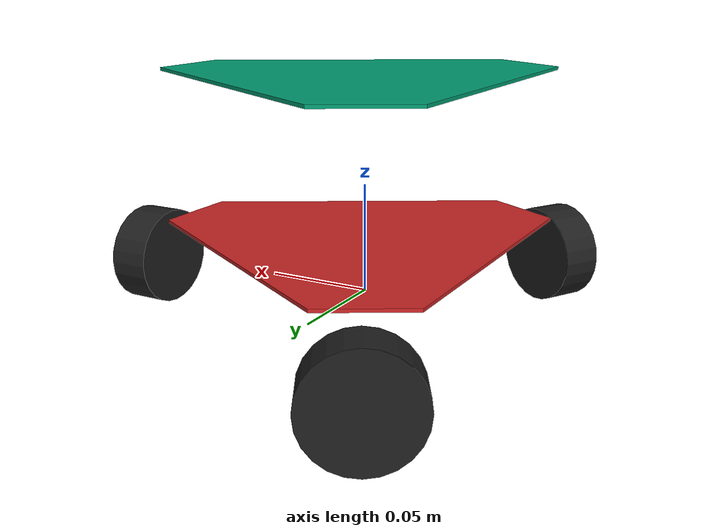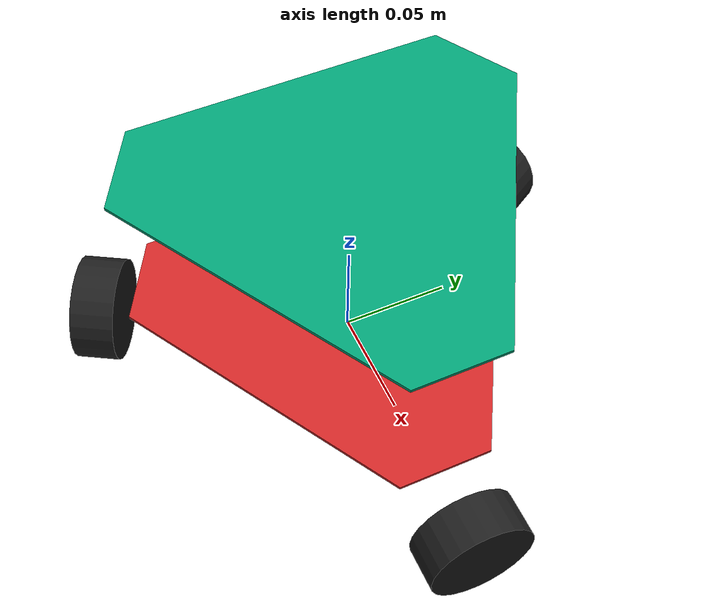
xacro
<?xml version="1.0" ?>
<!--
 This is a standalone URDF model of 2WD smart car robot
 -->

<robot name="delta_robot" xmlns:xacro="http://ros.org/wiki/xacro">

  <xacro:include filename="$(find delta_robot_description)/urdf/delta.gazebo.xacro"/>

  <xacro:property name="M_PI" value="3.1415926535897931" />
  <xacro:property name="M_PI_2" value="1.570796327" />
  <xacro:property name="DEG_TO_RAD" value="0.017453293" />

    <link name="base_footprint"/>
    <joint name="base_joint" type="fixed">
      <origin xyz="0 0 0.024" rpy="0 0 0" />
      <parent link="base_footprint"/>
      <child link="base_link" />
    </joint>

    <link name="base_link">
      <visual>
        <geometry>
          <!-- new mesh -->
          <mesh filename="package://delta_robot_description/meshes/body/base.dae" scale="0.001 0.001 0.001"/>
        </geometry>
	 	<origin xyz="0 0 0" rpy=" 0 0 0 "/>
      </visual>

    <collision>
        <geometry>
		<mesh filename="package://delta_robot_description/meshes/body/base.dae" scale="0.001 0.001 0.001"/>
        </geometry>
	 	<origin xyz="0 0 0" rpy=" 0 0 0 "/>
	</collision>

      <inertial>
        <!-- COM experimentally determined -->
        <origin xyz="0 0 0"/>
        <mass value="2.4"/> <!-- 2.4/2.6 kg for small/big battery pack -->

        <inertia ixx="0.019995" ixy="0.0" ixz="0.0"
                 iyy="0.019995" iyz="0.0"
                 izz="0.03675" />
      </inertial>
    </link>

<!-- superior base -->

    <joint name="top_base_joint" type="fixed">
      <origin xyz="0 0 0.074" rpy="0 0 0" />
      <parent link="base_link"/>
      <child link="top_base_link" />
    </joint>

    <link name="top_base_link">
      <visual>
        <geometry>
          <!-- new mesh -->
          <mesh filename="package://delta_robot_description/meshes/body/base.dae" scale="0.001 0.001 0.001"/>
        </geometry>
	 	<origin xyz="0 0 0" rpy=" 0 0 0 "/>
      </visual>

    <collision>
        <geometry>
		<mesh filename="package://delta_robot_description/meshes/body/base.dae" scale="0.001 0.001 0.001"/>
        </geometry>
	 	<origin xyz="0 0 0" rpy=" 0 0 0 "/>
	</collision>

      <inertial>
        <!-- COM experimentally determined -->
        <origin xyz="0 0 0"/>
        <mass value="2.4"/> <!-- 2.4/2.6 kg for small/big battery pack -->

        <inertia ixx="0.019995" ixy="0.0" ixz="0.0"
                 iyy="0.019995" iyz="0.0"
                 izz="0.03675" />
      </inertial>
    </link>

<!-- Wheel and caster wheel link  -->

        <!-- NOTE This may prevent gazebo from working with this model -->
	  <joint name="front_wheel_joint" type="fixed">
	    <origin xyz="0.123 0 -0.024" rpy="0 0 0"/>
	    <parent link="base_link"/>
	    <child link="front_wheel_link"/>
	    <axis xyz="1 0 0"/>

      	    <limit effort="100" velocity="100"/>
            <joint_properties damping="0.0" friction="0.0"/>

	  </joint>

	  <link name="front_wheel_link">
	    <inertial>
	      <origin xyz="0 0 0"/>
	      <mass value="0.01" />
	      <inertia ixx="0.001" ixy="0.0" ixz="0.0"
	        iyy="0.001" iyz="0.0" izz="0.001" />
	    </inertial>

	    <visual>
	      <origin xyz="0 0 0" rpy="0 ${DEG_TO_RAD*90} 0" />
	      <geometry>
		  <cylinder radius="0.024" length = "0.02"/>
	      </geometry>
         	 <material name ="black" />
	    </visual>

	    <collision>
	      <origin xyz="0 0 0" rpy="0 ${DEG_TO_RAD*90} 0" />
	      <geometry>
		  <cylinder radius="0.024" length = "0.02"/>
	      </geometry>
	    </collision>
	  </link>

	  <link name="right_wheel_link">
	    <inertial>
	      <origin xyz="0 0 0"/>
	      <mass value="0.01" />
	      <inertia ixx="0.001" ixy="0.0" ixz="0.0"
	        iyy="0.001" iyz="0.0" izz="0.001" />
	    </inertial>

	    <visual>
	      <origin xyz="0 0 0" rpy="0 ${DEG_TO_RAD*90} 0" />
	      <geometry>
		  <cylinder radius="0.024" length = "0.02"/>
	      </geometry>
          	<material name ="black" />
	    </visual>

	    <collision>
	      <origin xyz="0 0 0" rpy="0 ${DEG_TO_RAD*90} 0" />
	      <geometry>
		  <cylinder radius="0.024" length = "0.02"/>
	      </geometry>
	    </collision>
	  </link>

        <!-- Fixed because we never rotate it anyway, it is just for show -->
        <!-- NOTE This may prevent gazebo from working with this model -->
	  <joint name="right_wheel_joint" type="fixed">
	    <origin xyz="-0.055 -0.102 -0.024" rpy="0 0 ${DEG_TO_RAD*-120}"/>
	    <parent link="base_link"/>
	    <child link="right_wheel_link"/>
	    <axis xyz="1 0 0"/>
	  </joint>

    <joint name="left_wheel_joint" type="fixed">
	    <parent link="base_link"/>
    	<child link="left_wheel_link"/>
    	<origin xyz="-0.055 0.102 -0.024" rpy="0 0 ${DEG_TO_RAD*120}"/>
    	<axis xyz="1 0 0"/>

    </joint>

    <link name="left_wheel_link">
	    <inertial>
	      <origin xyz="0 0 0"/>
	      <mass value="0.01" />
	      <inertia ixx="0.001" ixy="0.0" ixz="0.0"
	        iyy="0.001" iyz="0.0"
          izz="0.001" />
	    </inertial>

	    <visual>
	      <origin xyz="0 0 0" rpy="0 ${DEG_TO_RAD*90} 0" />
	      <geometry>
		  <cylinder radius="0.024" length = "0.02"/>
	      </geometry>
          	<material name ="black" />
	    </visual>

	    <collision>
	      <origin xyz="0 0 0" rpy="0 ${DEG_TO_RAD*90} 0" />
	      <geometry>
		  <cylinder radius="0.024" length = "0.02"/>
	      </geometry>
	    </collision>
	  </link>

      <gazebo>
        <plugin name="gazebo_ros_control" filename="libgazebo_ros_control.so">
          <robotNamespace>/robot1</robotNamespace>
        </plugin>
      </gazebo>
	     <gazebo reference="base_link">
       <material>Gazebo/Red</material>
     </gazebo>
	<xacro:omni_steering/>
</robot>
